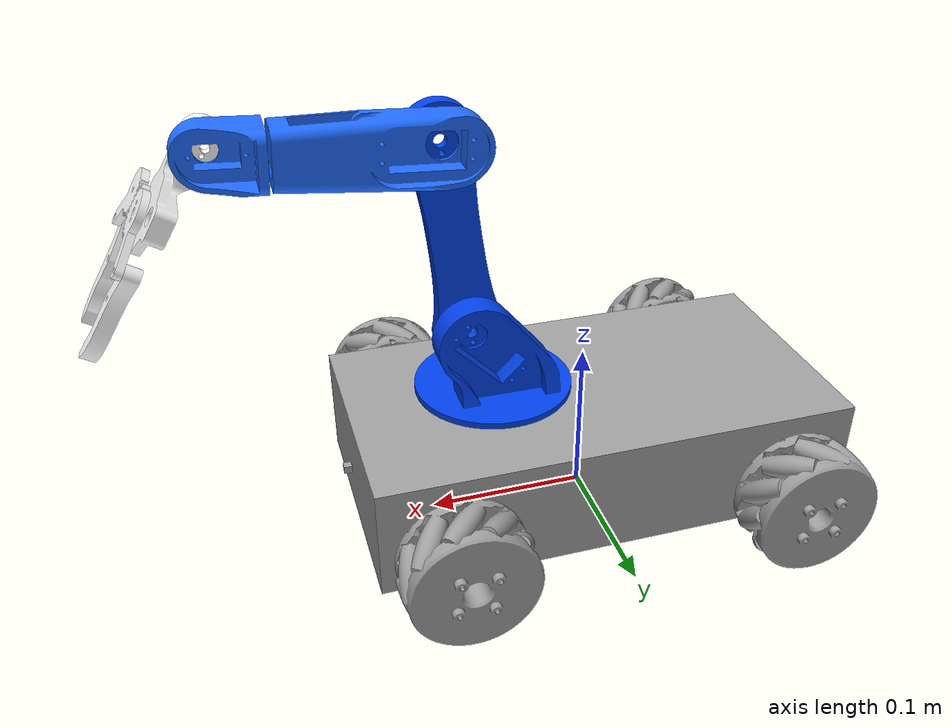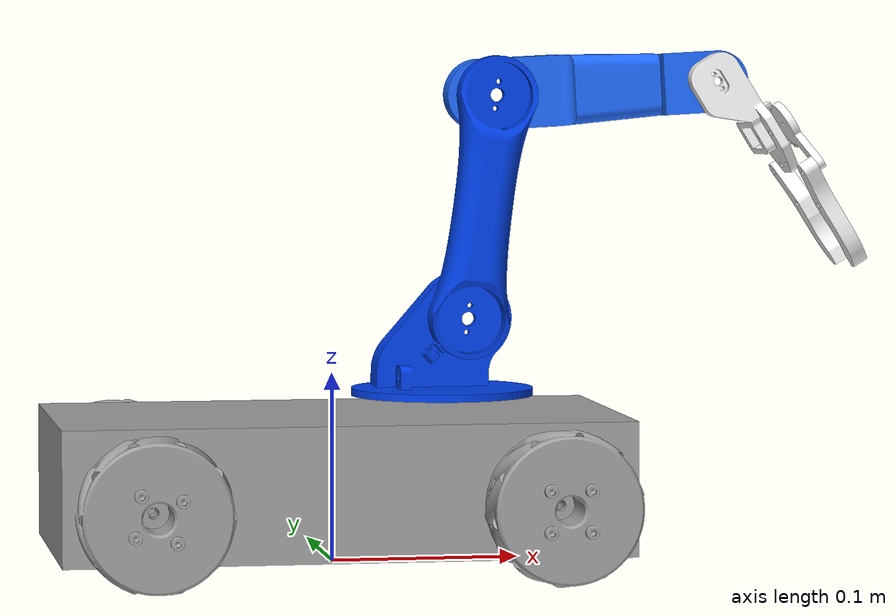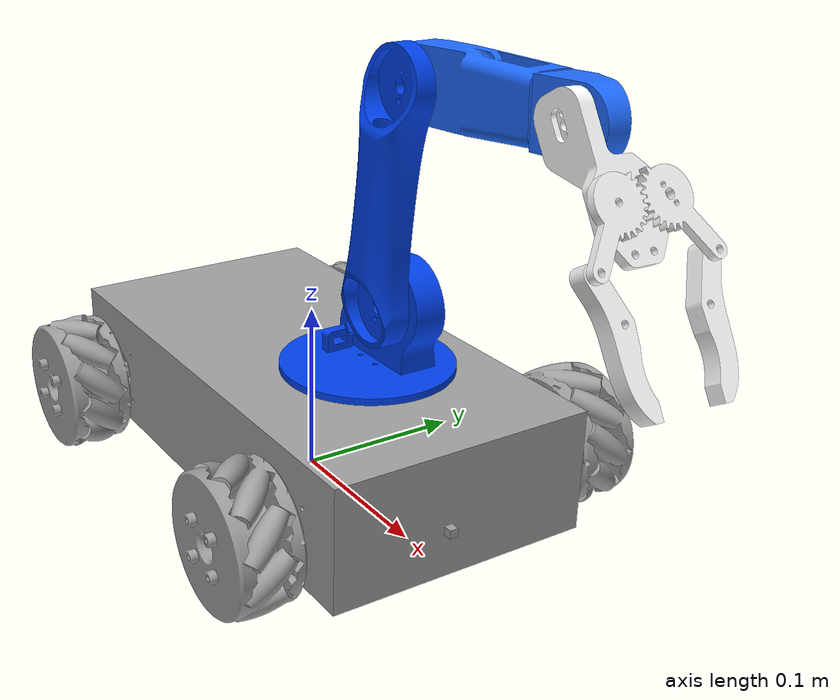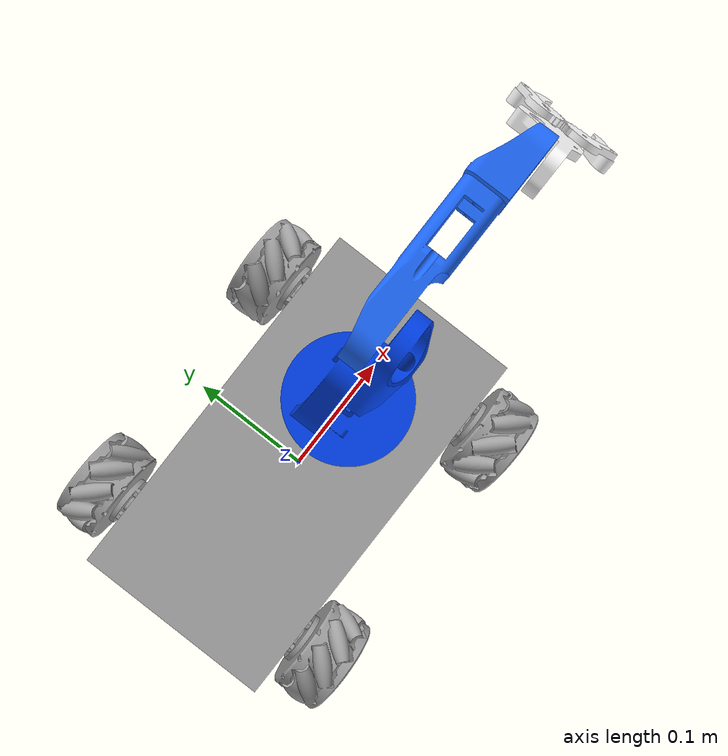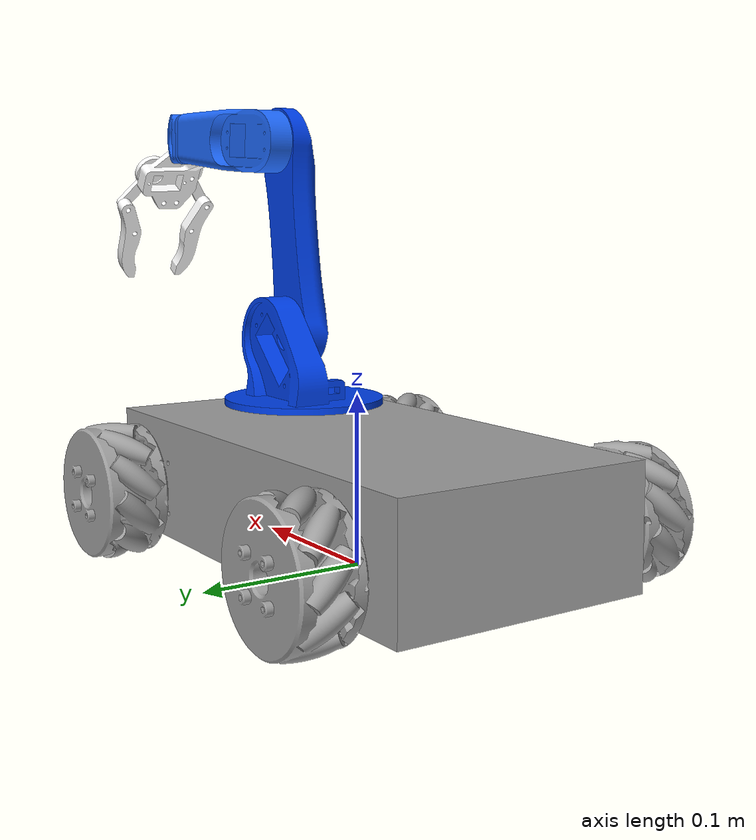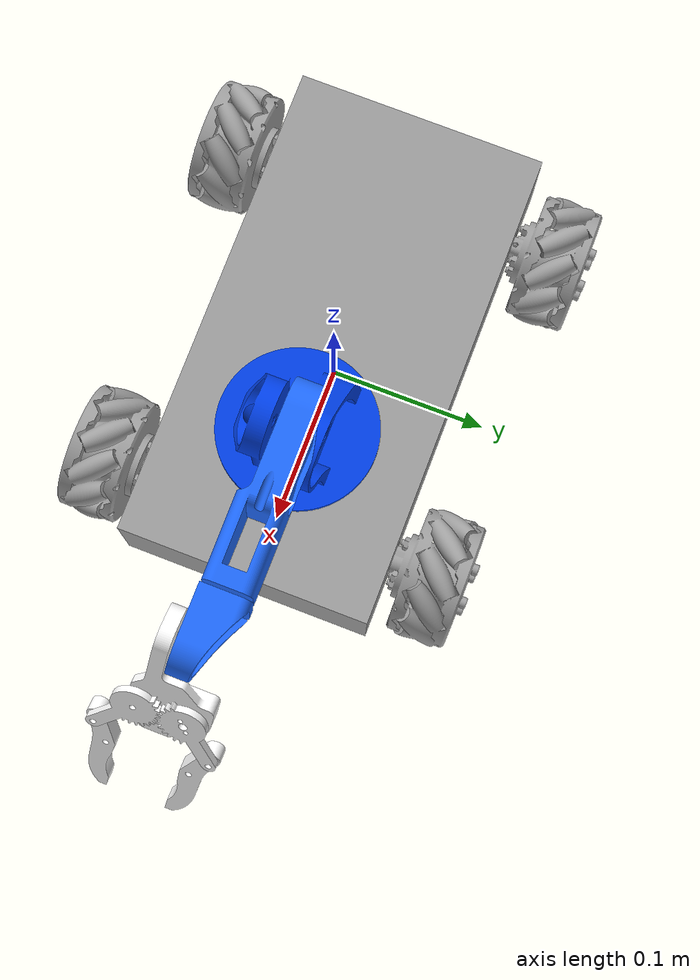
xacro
<?xml version="1.0" ?>
<robot name="mecanum" xmlns:xacro="http://www.ros.org/wiki/xacro">

<xacro:include filename="$(find mecanum_description)/urdf/materials.xacro" />
<xacro:include filename="$(find mecanum_description)/urdf/mecanum.trans" />
<xacro:include filename="$(find mecanum_description)/urdf/mecanum.gazebo" />
<link name="base_link">
  <inertial>
    <origin xyz="-0.15000000000002084 -0.06797027234125849 0.0355880237291439" rpy="0 0 0"/>
    <mass value="8.777128082724442"/>
    <inertia ixx="0.030708" iyy="0.085311" izz="0.102783" ixy="0.0" iyz="-0.0" ixz="-0.0"/>
  </inertial>
  <visual>
    <origin xyz="0 0 0" rpy="0 0 0"/>
    <geometry>
      <mesh filename="package://mecanum_description/meshes/base_link.stl" scale="0.001 0.001 0.001"/>
    </geometry>
    <material name="steel_satin"/>
  </visual>
  <collision>
    <origin xyz="0 0 0" rpy="0 0 0"/>
    <geometry>
      <mesh filename="package://mecanum_description/meshes/base_link.stl" scale="0.001 0.001 0.001"/>
    </geometry>
  </collision>
</link>

<link name="Mecanum_Wheel_Assembly_Right-r4_1">
  <inertial>
    <origin xyz="-1.5129569133368048e-05 0.026870032144622125 5.42477174292344e-11" rpy="0 0 0"/>
    <mass value="0.9525240556329165"/>
    <inertia ixx="0.000492" iyy="0.000705" izz="0.000492" ixy="-0.0" iyz="0.0" ixz="0.0"/>
  </inertial>
  <visual>
    <origin xyz="0.045 -0.01003 -0.03" rpy="0 0 0"/>
    <geometry>
      <mesh filename="package://mecanum_description/meshes/Mecanum_Wheel_Assembly_Right-r4_1.stl" scale="0.001 0.001 0.001"/>
    </geometry>
    <material name="steel_satin"/>
  </visual>
  <collision>
    <origin xyz="0.045 -0.01003 -0.03" rpy="0 0 0"/>
    <geometry>
      <mesh filename="package://mecanum_description/meshes/Mecanum_Wheel_Assembly_Right-r4_1.stl" scale="0.001 0.001 0.001"/>
    </geometry>
  </collision>
</link>

<link name="Mecanum_Wheel_Assembly_Left-r4_2">
  <inertial>
    <origin xyz="-1.5036421291282631e-05 -0.026897988073681378 8.703700954404425e-11" rpy="0 0 0"/>
    <mass value="0.9584295019990953"/>
    <inertia ixx="0.000493" iyy="0.000706" izz="0.000493" ixy="0.0" iyz="-0.0" ixz="-0.0"/>
  </inertial>
  <visual>
    <origin xyz="0.045 0.14597 -0.03" rpy="0 0 0"/>
    <geometry>
      <mesh filename="package://mecanum_description/meshes/Mecanum_Wheel_Assembly_Left-r4_2.stl" scale="0.001 0.001 0.001"/>
    </geometry>
    <material name="steel_satin"/>
  </visual>
  <collision>
    <origin xyz="0.045 0.14597 -0.03" rpy="0 0 0"/>
    <geometry>
      <mesh filename="package://mecanum_description/meshes/Mecanum_Wheel_Assembly_Left-r4_2.stl" scale="0.001 0.001 0.001"/>
    </geometry>
  </collision>
</link>

<link name="Mecanum_Wheel_Assembly_Left-r4_1">
  <inertial>
    <origin xyz="-8.703737730542116e-11 0.02689744339116402 1.5036421291140384e-05" rpy="0 0 0"/>
    <mass value="0.9584295019990953"/>
    <inertia ixx="0.000493" iyy="0.000706" izz="0.000493" ixy="-0.0" iyz="0.0" ixz="-0.0"/>
  </inertial>
  <visual>
    <origin xyz="0.255 -0.01003 -0.03" rpy="0 0 0"/>
    <geometry>
      <mesh filename="package://mecanum_description/meshes/Mecanum_Wheel_Assembly_Left-r4_1.stl" scale="0.001 0.001 0.001"/>
    </geometry>
    <material name="steel_satin"/>
  </visual>
  <collision>
    <origin xyz="0.255 -0.01003 -0.03" rpy="0 0 0"/>
    <geometry>
      <mesh filename="package://mecanum_description/meshes/Mecanum_Wheel_Assembly_Left-r4_1.stl" scale="0.001 0.001 0.001"/>
    </geometry>
  </collision>
</link>

<link name="Mecanum_Wheel_Assembly_Right-r4_2">
  <inertial>
    <origin xyz="-1.5129572465022445e-05 -0.026870576827139225 -5.3343097300428965e-11" rpy="0 0 0"/>
    <mass value="0.9525240556329165"/>
    <inertia ixx="0.000492" iyy="0.000705" izz="0.000492" ixy="0.0" iyz="0.0" ixz="-0.0"/>
  </inertial>
  <visual>
    <origin xyz="0.255 0.14597 -0.03" rpy="0 0 0"/>
    <geometry>
      <mesh filename="package://mecanum_description/meshes/Mecanum_Wheel_Assembly_Right-r4_2.stl" scale="0.001 0.001 0.001"/>
    </geometry>
    <material name="steel_satin"/>
  </visual>
  <collision>
    <origin xyz="0.255 0.14597 -0.03" rpy="0 0 0"/>
    <geometry>
      <mesh filename="package://mecanum_description/meshes/Mecanum_Wheel_Assembly_Right-r4_2.stl" scale="0.001 0.001 0.001"/>
    </geometry>
  </collision>
</link>

<link name="Waist-r4_1">
  <inertial>
    <origin xyz="0.0013721085407133876 0.006434224735784519 0.02588946449425461" rpy="0 0 0"/>
    <mass value="0.5340963741858208"/>
    <inertia ixx="0.000353" iyy="0.000456" izz="0.000429" ixy="-5e-06" iyz="-4.1e-05" ixz="-4.9e-05"/>
  </inertial>
  <visual>
    <origin xyz="0.09075 0.06797 -0.071" rpy="0 0 0"/>
    <geometry>
      <mesh filename="package://mecanum_description/meshes/Waist-r4_1.stl" scale="0.001 0.001 0.001"/>
    </geometry>
    <material name="opaque065235"/>
  </visual>
  <collision>
    <origin xyz="0.09075 0.06797 -0.071" rpy="0 0 0"/>
    <geometry>
      <mesh filename="package://mecanum_description/meshes/Waist-r4_1.stl" scale="0.001 0.001 0.001"/>
    </geometry>
  </collision>
</link>

<link name="Arm_01-r4_1">
  <inertial>
    <origin xyz="0.007276400463639754 -0.009968475020895304 0.05829216132803776" rpy="0 0 0"/>
    <mass value="0.5054466041806499"/>
    <inertia ixx="0.00085" iyy="0.000903" izz="8.7e-05" ixy="0.0" iyz="-1e-06" ixz="-0.000107"/>
  </inertial>
  <visual>
    <origin xyz="0.076831 0.06397 -0.119876" rpy="0 0 0"/>
    <geometry>
      <mesh filename="package://mecanum_description/meshes/Arm_01-r4_1.stl" scale="0.001 0.001 0.001"/>
    </geometry>
    <material name="opaque065235"/>
  </visual>
  <collision>
    <origin xyz="0.076831 0.06397 -0.119876" rpy="0 0 0"/>
    <geometry>
      <mesh filename="package://mecanum_description/meshes/Arm_01-r4_1.stl" scale="0.001 0.001 0.001"/>
    </geometry>
  </collision>
</link>

<link name="Arm_02_v3-r4_1">
  <inertial>
    <origin xyz="0.03921280162495297 0.010608631397993729 0.0024152394126248367" rpy="0 0 0"/>
    <mass value="0.3946102743313452"/>
    <inertia ixx="7.4e-05" iyy="0.000456" izz="0.000428" ixy="-2e-06" iyz="-0.0" ixz="-2e-05"/>
  </inertial>
  <visual>
    <origin xyz="0.061478 0.06617 -0.239044" rpy="0 0 0"/>
    <geometry>
      <mesh filename="package://mecanum_description/meshes/Arm_02_v3-r4_1.stl" scale="0.001 0.001 0.001"/>
    </geometry>
    <material name="opaque31107255"/>
  </visual>
  <collision>
    <origin xyz="0.061478 0.06617 -0.239044" rpy="0 0 0"/>
    <geometry>
      <mesh filename="package://mecanum_description/meshes/Arm_02_v3-r4_1.stl" scale="0.001 0.001 0.001"/>
    </geometry>
  </collision>
</link>

<link name="Arm_03-r4_1">
  <inertial>
    <origin xyz="0.019380128166351606 -0.005113707745337925 0.006262692412963039" rpy="0 0 0"/>
    <mass value="0.129528136691123"/>
    <inertia ixx="2.1e-05" iyy="3.9e-05" izz="3.1e-05" ixy="5e-06" iyz="-0.0" ixz="-1e-06"/>
  </inertial>
  <visual>
    <origin xyz="-0.028414 0.05547 -0.238885" rpy="0 0 0"/>
    <geometry>
      <mesh filename="package://mecanum_description/meshes/Arm_03-r4_1.stl" scale="0.001 0.001 0.001"/>
    </geometry>
    <material name="opaque31107255"/>
  </visual>
  <collision>
    <origin xyz="-0.028414 0.05547 -0.238885" rpy="0 0 0"/>
    <geometry>
      <mesh filename="package://mecanum_description/meshes/Arm_03-r4_1.stl" scale="0.001 0.001 0.001"/>
    </geometry>
  </collision>
</link>

<link name="Gripper_base-r4_1">
  <inertial>
    <origin xyz="0.017263361463318645 9.66224813629818e-05 -0.017054462347772692" rpy="0 0 0"/>
    <mass value="0.12341304164534714"/>
    <inertia ixx="4.2e-05" iyy="5.7e-05" izz="4.1e-05" ixy="-7e-06" iyz="8e-06" ixz="2.5e-05"/>
  </inertial>
  <visual>
    <origin xyz="-0.057925 0.069317 -0.245912" rpy="0 0 0"/>
    <geometry>
      <mesh filename="package://mecanum_description/meshes/Gripper_base-r4_1.stl" scale="0.001 0.001 0.001"/>
    </geometry>
    <material name="opaque255255255"/>
  </visual>
  <collision>
    <origin xyz="-0.057925 0.069317 -0.245912" rpy="0 0 0"/>
    <geometry>
      <mesh filename="package://mecanum_description/meshes/Gripper_base-r4_1.stl" scale="0.001 0.001 0.001"/>
    </geometry>
  </collision>
</link>

<link name="Gripper_finger-r4_2">
  <inertial>
    <origin xyz="0.01030198502563548 0.005041203073966563 -0.025098971653193164" rpy="0 0 0"/>
    <mass value="0.04236978910676512"/>
    <inertia ixx="1e-05" iyy="1.3e-05" izz="4e-06" ixy="-1e-06" iyz="1e-06" ixz="6e-06"/>
  </inertial>
  <visual>
    <origin xyz="-0.105717 0.098932 -0.202174" rpy="0 0 0"/>
    <geometry>
      <mesh filename="package://mecanum_description/meshes/Gripper_finger-r4_2.stl" scale="0.001 0.001 0.001"/>
    </geometry>
    <material name="opaque255255255"/>
  </visual>
  <collision>
    <origin xyz="-0.105717 0.098932 -0.202174" rpy="0 0 0"/>
    <geometry>
      <mesh filename="package://mecanum_description/meshes/Gripper_finger-r4_2.stl" scale="0.001 0.001 0.001"/>
    </geometry>
  </collision>
</link>

<link name="Gripper_finger-r4_1">
  <inertial>
    <origin xyz="0.010192617690079106 -0.0072800365096166025 -0.024589200476342027" rpy="0 0 0"/>
    <mass value="0.04236978910676512"/>
    <inertia ixx="1e-05" iyy="1.3e-05" izz="5e-06" ixy="1e-06" iyz="-2e-06" ixz="5e-06"/>
  </inertial>
  <visual>
    <origin xyz="-0.10585 0.036376 -0.200276" rpy="0 0 0"/>
    <geometry>
      <mesh filename="package://mecanum_description/meshes/Gripper_finger-r4_1.stl" scale="0.001 0.001 0.001"/>
    </geometry>
    <material name="opaque255255255"/>
  </visual>
  <collision>
    <origin xyz="-0.10585 0.036376 -0.200276" rpy="0 0 0"/>
    <geometry>
      <mesh filename="package://mecanum_description/meshes/Gripper_finger-r4_1.stl" scale="0.001 0.001 0.001"/>
    </geometry>
  </collision>
</link>

<link name="gear1-r4_1">
  <inertial>
    <origin xyz="0.007238922536235301 -0.002803673262794737 -0.0012135769318998013" rpy="0 0 0"/>
    <mass value="0.020736664284343446"/>
    <inertia ixx="3e-06" iyy="2e-06" izz="2e-06" ixy="1e-06" iyz="-1e-06" ixz="1e-06"/>
  </inertial>
  <visual>
    <origin xyz="-0.089696 0.080453 -0.221139" rpy="0 0 0"/>
    <geometry>
      <mesh filename="package://mecanum_description/meshes/gear1-r4_1.stl" scale="0.001 0.001 0.001"/>
    </geometry>
    <material name="opaque255255255"/>
  </visual>
  <collision>
    <origin xyz="-0.089696 0.080453 -0.221139" rpy="0 0 0"/>
    <geometry>
      <mesh filename="package://mecanum_description/meshes/gear1-r4_1.stl" scale="0.001 0.001 0.001"/>
    </geometry>
  </collision>
</link>

<link name="gear2-r4_1">
  <inertial>
    <origin xyz="0.00729082921388266 0.002732550226373101 -0.0014467237383747888" rpy="0 0 0"/>
    <mass value="0.020141998404349184"/>
    <inertia ixx="3e-06" iyy="2e-06" izz="2e-06" ixy="-1e-06" iyz="1e-06" ixz="1e-06"/>
  </inertial>
  <visual>
    <origin xyz="-0.089739 0.053564 -0.220346" rpy="0 0 0"/>
    <geometry>
      <mesh filename="package://mecanum_description/meshes/gear2-r4_1.stl" scale="0.001 0.001 0.001"/>
    </geometry>
    <material name="opaque255255255"/>
  </visual>
  <collision>
    <origin xyz="-0.089739 0.053564 -0.220346" rpy="0 0 0"/>
    <geometry>
      <mesh filename="package://mecanum_description/meshes/gear2-r4_1.stl" scale="0.001 0.001 0.001"/>
    </geometry>
  </collision>
</link>

<joint name="wheel_fl" type="continuous">
  <origin xyz="-0.045 0.01003 0.03" rpy="0 0 0"/>
  <parent link="base_link"/>
  <child link="Mecanum_Wheel_Assembly_Right-r4_1"/>
  <axis xyz="0.0 1.0 0.0"/>
</joint>

<joint name="wheel_fr" type="continuous">
  <origin xyz="-0.045 -0.14597 0.03" rpy="0 0 0"/>
  <parent link="base_link"/>
  <child link="Mecanum_Wheel_Assembly_Left-r4_2"/>
  <axis xyz="0.0 1.0 0.0"/>
</joint>

<joint name="wheel_bl" type="continuous">
  <origin xyz="-0.255 0.01003 0.03" rpy="0 0 0"/>
  <parent link="base_link"/>
  <child link="Mecanum_Wheel_Assembly_Left-r4_1"/>
  <axis xyz="0.0 1.0 0.0"/>
</joint>

<joint name="wheel_br" type="continuous">
  <origin xyz="-0.255 -0.14597 0.03" rpy="0 0 0"/>
  <parent link="base_link"/>
  <child link="Mecanum_Wheel_Assembly_Right-r4_2"/>
  <axis xyz="0.0 1.0 0.0"/>
</joint>

<joint name="rev_waist" type="continuous">
  <origin xyz="-0.09075 -0.06797 0.071" rpy="0 0 0"/>
  <parent link="base_link"/>
  <child link="Waist-r4_1"/>
  <axis xyz="0.0 0.0 1.0"/>
</joint>

<joint name="rev_shoulder" type="continuous">
  <origin xyz="0.013919 0.004 0.048876" rpy="0 0 0"/>
  <parent link="Waist-r4_1"/>
  <child link="Arm_01-r4_1"/>
  <axis xyz="0.0 -1.0 0.0"/>
</joint>

<joint name="rev_elbow" type="continuous">
  <origin xyz="0.015353 -0.0022 0.119168" rpy="0 0 0"/>
  <parent link="Arm_01-r4_1"/>
  <child link="Arm_02_v3-r4_1"/>
  <axis xyz="0.0 -1.0 0.0"/>
</joint>

<joint name="rev_wrist" type="continuous">
  <origin xyz="0.089892 0.0107 -0.000159" rpy="0 0 0"/>
  <parent link="Arm_02_v3-r4_1"/>
  <child link="Arm_03-r4_1"/>
  <axis xyz="0.998519 0.0 0.054413"/>
</joint>

<joint name="rev_effector" type="continuous">
  <origin xyz="0.029511 -0.013847 0.007027" rpy="0 0 0"/>
  <parent link="Arm_03-r4_1"/>
  <child link="Gripper_base-r4_1"/>
  <axis xyz="0.001606 0.999564 -0.029478"/>
</joint>

<joint name="rfinger_mimic" type="continuous">
  <origin xyz="0.016021 -0.018479 -0.018965" rpy="0 0 0"/>
  <mimic joint="rgear" multiplier="1"/>
  <parent link="gear1-r4_1"/>
  <child link="Gripper_finger-r4_2"/>
  <axis xyz="-0.852736 -0.014028 -0.522154"/>
</joint>

<joint name="lfinger_mimic" type="continuous">
  <origin xyz="0.016111 0.017188 -0.02007" rpy="0 0 0"/>
  <mimic joint="lgear" multiplier="-1"/>
  <parent link="gear2-r4_1"/>
  <child link="Gripper_finger-r4_1"/>
  <axis xyz="0.852736 0.014028 0.522154"/>
</joint>

<joint name="rgear" type="continuous">
  <origin xyz="0.031771 -0.011136 -0.024773" rpy="0 0 0"/>
  <parent link="Gripper_base-r4_1"/>
  <child link="gear1-r4_1"/>
  <axis xyz="0.852736 0.014028 0.522154"/>
</joint>

<joint name="lgear" type="continuous">
  <origin xyz="0.031814 0.015753 -0.025566" rpy="0 0 0"/>
  <mimic joint="rgear" multiplier="-1"/>
  <parent link="Gripper_base-r4_1"/>
  <child link="gear2-r4_1"/>
  <axis xyz="0.852736 0.014028 0.522154"/>
</joint>

<!-- IMU, LIDAR moved to mecanum.gazebo -->

</robot>

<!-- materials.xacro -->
<robot name="mecanum" xmlns:xacro="http://www.ros.org/wiki/xacro" >

<material name="silver_default">
  <color rgba="0.700 0.700 0.700 1.000"/>
</material>
<material name="opaque199194189">
  <color rgba="0.7803921568627451 0.7607843137254902 0.7411764705882353 1.0"/>
</material>
<material name="steel_satin">
  <color rgba="0.6274509803921569 0.6274509803921569 0.6274509803921569 1.0"/>
</material>
<material name="opaque065235">
  <color rgba="0.0 0.2549019607843137 0.9215686274509803 1.0"/>
</material>
<material name="opaque646464">
  <color rgba="0.25098039215686274 0.25098039215686274 0.25098039215686274 1.0"/>
</material>
<material name="opaque3165255">
  <color rgba="0.12156862745098039 0.2549019607843137 1.0 1.0"/>
</material>
<material name="opaque31107255">
  <color rgba="0.12156862745098039 0.4196078431372549 1.0 1.0"/>
</material>
<material name="opaque255255255">
  <color rgba="1.0 1.0 1.0 1.0"/>
</material>

</robot>

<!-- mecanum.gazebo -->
<robot name="mecanum" xmlns:xacro="http://www.ros.org/wiki/xacro" >

<!-- IMU, LIDAR -->

<link name="lidar_front_1">
  <inertial>
    <origin xyz="0.002499999999999972 -2.723412585170504e-07 -9.71445146547012e-17" rpy="0 0 0"/>
    <mass value="0.00098125"/>
    <inertia ixx="0.0" iyy="0.0" izz="0.0" ixy="-0.0" iyz="0.0" ixz="0.0"/>
  </inertial>
  <visual>
    <origin xyz="0.0 0.06797 -0.0355" rpy="0 0 0"/>
    <geometry>
      <mesh filename="package://mecanum_description/meshes/lidar_front_1.stl" scale="0.001 0.001 0.001"/>
    </geometry>
    <material name="steel_satin"/>
  </visual>
  <collision>
    <origin xyz="0.0 0.06797 -0.0355" rpy="0 0 0"/>
    <geometry>
      <mesh filename="package://mecanum_description/meshes/lidar_front_1.stl" scale="0.001 0.001 0.001"/>
    </geometry>
  </collision>
</link>

<link name="imu_link_1">
  <inertial>
    <origin xyz="-2.7755575615628914e-17 -2.723412584615392e-07 0.002499999999999898" rpy="0 0 0"/>
    <mass value="0.00098125"/>
    <inertia ixx="0.0" iyy="0.0" izz="0.0" ixy="-0.0" iyz="0.0" ixz="-0.0"/>
  </inertial>
  <visual>
    <origin xyz="0.15 0.06797 -0.008" rpy="0 0 0"/>
    <geometry>
      <mesh filename="package://mecanum_description/meshes/imu_link_1.stl" scale="0.001 0.001 0.001"/>
    </geometry>
    <material name="steel_satin"/>
  </visual>
  <collision>
    <origin xyz="0.15 0.06797 -0.008" rpy="0 0 0"/>
    <geometry>
      <mesh filename="package://mecanum_description/meshes/imu_link_1.stl" scale="0.001 0.001 0.001"/>
    </geometry>
  </collision>
</link>

<joint name="lidar_joint_f" type="fixed">
  <origin xyz="0.0 -0.078 0.0275" rpy="0 0 0"/>
  <parent link="base_link"/>
  <child link="lidar_front_1"/>
</joint>

<joint name="imu_joint" type="fixed">
  <origin xyz="-0.15 -0.06797 0.008" rpy="0 0 0"/>
  <parent link="base_link"/>
  <child link="imu_link_1"/>
</joint>

<gazebo reference="imu_link_1">
  <sensor name="imu_sensor" type="imu">
   <plugin filename="libgazebo_ros_imu_sensor.so" name="imu_plugin">
      <ros>
        <namespace>/demo</namespace>
        <remapping>~/out:=imu</remapping>
      </ros>
      <initial_orientation_as_reference>false</initial_orientation_as_reference>
    </plugin>
    <always_on>true</always_on>
    <update_rate>100</update_rate>
    <visualize>true</visualize>
    <imu>
      <angular_velocity>
        <x>
          <noise type="gaussian">
            <mean>0.0</mean>
            <stddev>2e-4</stddev>
            <bias_mean>0.0000075</bias_mean>
            <bias_stddev>0.0000008</bias_stddev>
          </noise>
        </x>
        <y>
          <noise type="gaussian">
            <mean>0.0</mean>
            <stddev>2e-4</stddev>
            <bias_mean>0.0000075</bias_mean>
            <bias_stddev>0.0000008</bias_stddev>
          </noise>
        </y>
        <z>
          <noise type="gaussian">
            <mean>0.0</mean>
            <stddev>2e-4</stddev>
            <bias_mean>0.0000075</bias_mean>
            <bias_stddev>0.0000008</bias_stddev>
          </noise>
        </z>
      </angular_velocity>
      <linear_acceleration>
        <x>
          <noise type="gaussian">
            <mean>0.0</mean>
            <stddev>1.7e-2</stddev>
            <bias_mean>0.1</bias_mean>
            <bias_stddev>0.001</bias_stddev>
          </noise>
        </x>
        <y>
          <noise type="gaussian">
            <mean>0.0</mean>
            <stddev>1.7e-2</stddev>
            <bias_mean>0.1</bias_mean>
            <bias_stddev>0.001</bias_stddev>
          </noise>
        </y>
        <z>
          <noise type="gaussian">
            <mean>0.0</mean>
            <stddev>1.7e-2</stddev>
            <bias_mean>0.1</bias_mean>
            <bias_stddev>0.001</bias_stddev>
          </noise>
        </z>
      </linear_acceleration>
    </imu>
  </sensor>
</gazebo>

<!--END IMU, LIDAR -->

<!--Planar Move Plugin (Omnidirectional motion)-->

<!-- root link, on the ground just below the model origin -->
  <link name="base_footprint">
   <visual>
      <origin xyz="-2.7755575615628914e-17 -2.723412584615392e-07 0" rpy="0 0 0" />
      <geometry>
        <box size="0.0001 0.0001 0.0001" />
      </geometry>
    </visual>
  </link>

  <joint name="base_link_joint" type="fixed">
    <origin xyz="0.15 0.06797 0.008" rpy="0 0 0" />
    <parent link="base_footprint"/>
    <child link="base_link" />
  </joint>

  <gazebo>
    <plugin name="object_controller" filename="libgazebo_ros_planar_move.so">
      <commandTopic>cmd_vel</commandTopic>
      <odometryTopic>odom</odometryTopic>
      <odometryFrame>odom</odometryFrame>
      <odometryRate>20.0</odometryRate>
      <robotBaseFrame>base_footprint</robotBaseFrame>
    </plugin>
  </gazebo>

 <!--END Planar Move Plugin -->

</robot>
